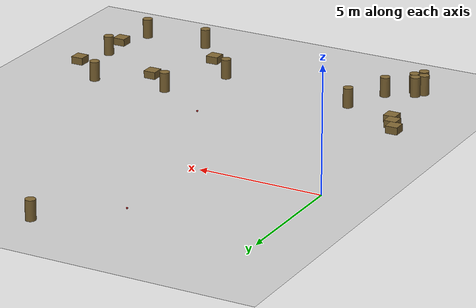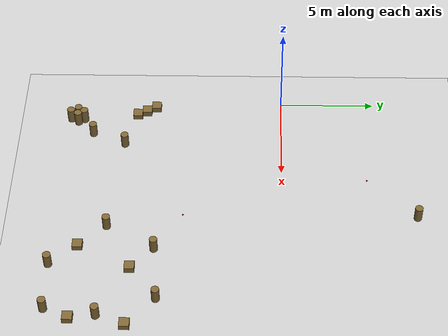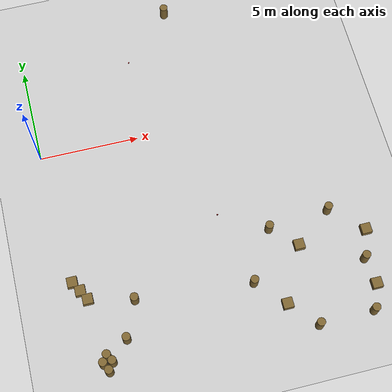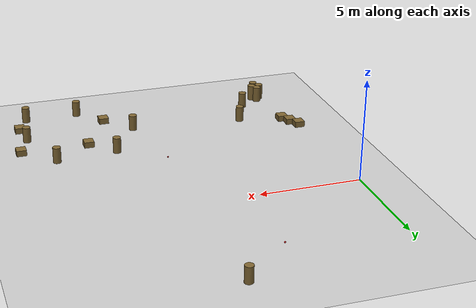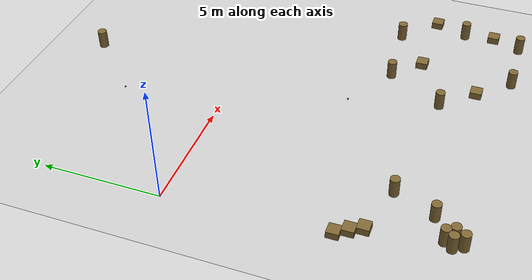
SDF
<sdf version="1.6">
 <world name="default">
  <model name="ground_plane">
   <static>1</static>
   <link name="link">
    <collision name="collision">
     <geometry><plane><normal>0 0 1</normal><size>100 100</size></plane></geometry>
     <surface><friction><ode><mu>100</mu><mu2>50</mu2></ode></friction></surface>
    </collision>
    <visual name="visual">
     <cast_shadows>0</cast_shadows>
     <geometry><plane><normal>0 0 1</normal><size>100 100</size></plane></geometry>
     <material>
      <script><uri>file://media/materials/scripts/gazebo.material</uri><name>Gazebo/Grey</name></script>
     </material>
    </visual>
   </link>
  </model>
  <model name="mini_cylinder_0_clone_0">
   <link name="link">
    <inertial>
     <mass>1</mass>
     <inertia><ixx>0.145833</ixx><ixy>0</ixy><ixz>0</ixz><iyy>0.145833</iyy><iyz>0</iyz><izz>0.125</izz></inertia>
    </inertial>
    <visual name="visual">
     <geometry><cylinder><radius>0.2</radius><length>0.8</length></cylinder></geometry>
     <material>
      <script><name>Gazebo/Grey</name><uri>file://media/materials/scripts/gazebo.material</uri></script>
      <shader type="vertex"><normal_map>__default__</normal_map></shader>
      <ambient>0.5 0.4 0.2 1</ambient>
      <diffuse>0.7 0.7 0.7 1</diffuse>
      <specular>0.01 0.01 0.01 1</specular>
      <emissive>0 0 0 1</emissive>
     </material>
    </visual>
    <collision name="collision">
     <geometry><cylinder><radius>0.2</radius><length>0.8</length></cylinder></geometry>
     <surface>
      <friction>
       <ode><mu>1</mu><mu2>1</mu2><fdir1>0 0 0</fdir1><slip1>0</slip1><slip2>0</slip2></ode>
       <torsional>
        <coefficient>1</coefficient>
        <patch_radius>0</patch_radius>
        <surface_radius>0</surface_radius>
        <use_patch_radius>1</use_patch_radius>
        <ode><slip>0</slip></ode>
       </torsional>
      </friction>
      <bounce><restitution_coefficient>0</restitution_coefficient><threshold>1e+06</threshold></bounce>
      <contact>
       <collide_without_contact>0</collide_without_contact>
       <collide_without_contact_bitmask>1</collide_without_contact_bitmask>
       <collide_bitmask>1</collide_bitmask>
       <ode>
        <soft_cfm>0</soft_cfm>
        <soft_erp>0.2</soft_erp>
        <kp>1e+13</kp>
        <kd>1</kd>
        <max_vel>0.01</max_vel>
        <min_depth>0</min_depth>
       </ode>
       <bullet>
        <split_impulse>1</split_impulse>
        <split_impulse_penetration_threshold>-0.01</split_impulse_penetration_threshold>
        <soft_cfm>0</soft_cfm>
        <soft_erp>0.2</soft_erp>
        <kp>1e+13</kp>
        <kd>1</kd>
       </bullet>
      </contact>
     </surface>
    </collision>
   </link>
   <static>1</static>
   <pose>8 6.85 0.4 0 -0 0</pose>
  </model>
  <model name="mini_cylinder_0_clone_0_clone">
   <link name="link">
    <inertial>
     <mass>1</mass>
     <inertia><ixx>0.145833</ixx><ixy>0</ixy><ixz>0</ixz><iyy>0.145833</iyy><iyz>0</iyz><izz>0.125</izz></inertia>
    </inertial>
    <visual name="visual">
     <geometry><cylinder><radius>0.2</radius><length>0.8</length></cylinder></geometry>
     <material>
      <script><name>Gazebo/Grey</name><uri>file://media/materials/scripts/gazebo.material</uri></script>
      <shader type="vertex"><normal_map>__default__</normal_map></shader>
      <ambient>0.5 0.4 0.2 1</ambient>
      <diffuse>0.7 0.7 0.7 1</diffuse>
      <specular>0.01 0.01 0.01 1</specular>
      <emissive>0 0 0 1</emissive>
     </material>
    </visual>
    <collision name="collision">
     <geometry><cylinder><radius>0.2</radius><length>0.8</length></cylinder></geometry>
     <surface>
      <friction>
       <ode><mu>1</mu><mu2>1</mu2><fdir1>0 0 0</fdir1><slip1>0</slip1><slip2>0</slip2></ode>
       <torsional>
        <coefficient>1</coefficient>
        <patch_radius>0</patch_radius>
        <surface_radius>0</surface_radius>
        <use_patch_radius>1</use_patch_radius>
        <ode><slip>0</slip></ode>
       </torsional>
      </friction>
      <bounce><restitution_coefficient>0</restitution_coefficient><threshold>1e+06</threshold></bounce>
      <contact>
       <collide_without_contact>0</collide_without_contact>
       <collide_without_contact_bitmask>1</collide_without_contact_bitmask>
       <collide_bitmask>1</collide_bitmask>
       <ode>
        <soft_cfm>0</soft_cfm>
        <soft_erp>0.2</soft_erp>
        <kp>1e+13</kp>
        <kd>1</kd>
        <max_vel>0.01</max_vel>
        <min_depth>0</min_depth>
       </ode>
       <bullet>
        <split_impulse>1</split_impulse>
        <split_impulse_penetration_threshold>-0.01</split_impulse_penetration_threshold>
        <soft_cfm>0</soft_cfm>
        <soft_erp>0.2</soft_erp>
        <kp>1e+13</kp>
        <kd>1</kd>
       </bullet>
      </contact>
     </surface>
    </collision>
   </link>
   <static>1</static>
   <pose>13.224 -6.11998 0.4 0 -0 0</pose>
  </model>
  <model name="mini_cylinder_0_clone_0_clone_0">
   <link name="link">
    <inertial>
     <mass>1</mass>
     <inertia><ixx>0.145833</ixx><ixy>0</ixy><ixz>0</ixz><iyy>0.145833</iyy><iyz>0</iyz><izz>0.125</izz></inertia>
    </inertial>
    <visual name="visual">
     <geometry><cylinder><radius>0.2</radius><length>0.8</length></cylinder></geometry>
     <material>
      <script><name>Gazebo/Grey</name><uri>file://media/materials/scripts/gazebo.material</uri></script>
      <shader type="vertex"><normal_map>__default__</normal_map></shader>
      <ambient>0.5 0.4 0.2 1</ambient>
      <diffuse>0.7 0.7 0.7 1</diffuse>
      <specular>0.01 0.01 0.01 1</specular>
      <emissive>0 0 0 1</emissive>
     </material>
    </visual>
    <collision name="collision">
     <geometry><cylinder><radius>0.2</radius><length>0.8</length></cylinder></geometry>
     <surface>
      <friction>
       <ode><mu>1</mu><mu2>1</mu2><fdir1>0 0 0</fdir1><slip1>0</slip1><slip2>0</slip2></ode>
       <torsional>
        <coefficient>1</coefficient>
        <patch_radius>0</patch_radius>
        <surface_radius>0</surface_radius>
        <use_patch_radius>1</use_patch_radius>
        <ode><slip>0</slip></ode>
       </torsional>
      </friction>
      <bounce><restitution_coefficient>0</restitution_coefficient><threshold>1e+06</threshold></bounce>
      <contact>
       <collide_without_contact>0</collide_without_contact>
       <collide_without_contact_bitmask>1</collide_without_contact_bitmask>
       <collide_bitmask>1</collide_bitmask>
       <ode>
        <soft_cfm>0</soft_cfm>
        <soft_erp>0.2</soft_erp>
        <kp>1e+13</kp>
        <kd>1</kd>
        <max_vel>0.01</max_vel>
        <min_depth>0</min_depth>
       </ode>
       <bullet>
        <split_impulse>1</split_impulse>
        <split_impulse_penetration_threshold>-0.01</split_impulse_penetration_threshold>
        <soft_cfm>0</soft_cfm>
        <soft_erp>0.2</soft_erp>
        <kp>1e+13</kp>
        <kd>1</kd>
       </bullet>
      </contact>
     </surface>
    </collision>
   </link>
   <static>1</static>
   <pose>8.7545 -8.82263 0.4 0 -0 0</pose>
  </model>
  <model name="mini_cylinder_0_clone_0_clone_1">
   <link name="link">
    <inertial>
     <mass>1</mass>
     <inertia><ixx>0.145833</ixx><ixy>0</ixy><ixz>0</ixz><iyy>0.145833</iyy><iyz>0</iyz><izz>0.125</izz></inertia>
    </inertial>
    <visual name="visual">
     <geometry><cylinder><radius>0.2</radius><length>0.8</length></cylinder></geometry>
     <material>
      <script><name>Gazebo/Grey</name><uri>file://media/materials/scripts/gazebo.material</uri></script>
      <shader type="vertex"><normal_map>__default__</normal_map></shader>
      <ambient>0.5 0.4 0.2 1</ambient>
      <diffuse>0.7 0.7 0.7 1</diffuse>
      <specular>0.01 0.01 0.01 1</specular>
      <emissive>0 0 0 1</emissive>
     </material>
    </visual>
    <collision name="collision">
     <geometry><cylinder><radius>0.2</radius><length>0.8</length></cylinder></geometry>
     <surface>
      <friction>
       <ode><mu>1</mu><mu2>1</mu2><fdir1>0 0 0</fdir1><slip1>0</slip1><slip2>0</slip2></ode>
       <torsional>
        <coefficient>1</coefficient>
        <patch_radius>0</patch_radius>
        <surface_radius>0</surface_radius>
        <use_patch_radius>1</use_patch_radius>
        <ode><slip>0</slip></ode>
       </torsional>
      </friction>
      <bounce><restitution_coefficient>0</restitution_coefficient><threshold>1e+06</threshold></bounce>
      <contact>
       <collide_without_contact>0</collide_without_contact>
       <collide_without_contact_bitmask>1</collide_without_contact_bitmask>
       <collide_bitmask>1</collide_bitmask>
       <ode>
        <soft_cfm>0</soft_cfm>
        <soft_erp>0.2</soft_erp>
        <kp>1e+13</kp>
        <kd>1</kd>
        <max_vel>0.01</max_vel>
        <min_depth>0</min_depth>
       </ode>
       <bullet>
        <split_impulse>1</split_impulse>
        <split_impulse_penetration_threshold>-0.01</split_impulse_penetration_threshold>
        <soft_cfm>0</soft_cfm>
        <soft_erp>0.2</soft_erp>
        <kp>1e+13</kp>
        <kd>1</kd>
       </bullet>
      </contact>
     </surface>
    </collision>
   </link>
   <static>1</static>
   <pose>14.2436 -8.91515 0.4 0 -0 0</pose>
  </model>
  <model name="mini_cylinder_0_clone_0_clone_2">
   <link name="link">
    <inertial>
     <mass>1</mass>
     <inertia><ixx>0.145833</ixx><ixy>0</ixy><ixz>0</ixz><iyy>0.145833</iyy><iyz>0</iyz><izz>0.125</izz></inertia>
    </inertial>
    <visual name="visual">
     <geometry><cylinder><radius>0.2</radius><length>0.8</length></cylinder></geometry>
     <material>
      <script><name>Gazebo/Grey</name><uri>file://media/materials/scripts/gazebo.material</uri></script>
      <shader type="vertex"><normal_map>__default__</normal_map></shader>
      <ambient>0.5 0.4 0.2 1</ambient>
      <diffuse>0.7 0.7 0.7 1</diffuse>
      <specular>0.01 0.01 0.01 1</specular>
      <emissive>0 0 0 1</emissive>
     </material>
    </visual>
    <collision name="collision">
     <geometry><cylinder><radius>0.2</radius><length>0.8</length></cylinder></geometry>
     <surface>
      <friction>
       <ode><mu>1</mu><mu2>1</mu2><fdir1>0 0 0</fdir1><slip1>0</slip1><slip2>0</slip2></ode>
       <torsional>
        <coefficient>1</coefficient>
        <patch_radius>0</patch_radius>
        <surface_radius>0</surface_radius>
        <use_patch_radius>1</use_patch_radius>
        <ode><slip>0</slip></ode>
       </torsional>
      </friction>
      <bounce><restitution_coefficient>0</restitution_coefficient><threshold>1e+06</threshold></bounce>
      <contact>
       <collide_without_contact>0</collide_without_contact>
       <collide_without_contact_bitmask>1</collide_without_contact_bitmask>
       <collide_bitmask>1</collide_bitmask>
       <ode>
        <soft_cfm>0</soft_cfm>
        <soft_erp>0.2</soft_erp>
        <kp>1e+13</kp>
        <kd>1</kd>
        <max_vel>0.01</max_vel>
        <min_depth>0</min_depth>
       </ode>
       <bullet>
        <split_impulse>1</split_impulse>
        <split_impulse_penetration_threshold>-0.01</split_impulse_penetration_threshold>
        <soft_cfm>0</soft_cfm>
        <soft_erp>0.2</soft_erp>
        <kp>1e+13</kp>
        <kd>1</kd>
       </bullet>
      </contact>
     </surface>
    </collision>
   </link>
   <static>1</static>
   <pose>13.8924 -11.4476 0.4 0 -0 0</pose>
  </model>
  <model name="mini_box_clone_clone_3_clone">
   <link name="link">
    <inertial>
     <mass>1</mass>
     <inertia>
      <ixx>0.166667</ixx>
      <ixy>0</ixy>
      <ixz>0</ixz>
      <iyy>0.166667</iyy>
      <iyz>0</iyz>
      <izz>0.166667</izz>
     </inertia>
    </inertial>
    <visual name="visual">
     <geometry><box><size>0.5 0.5 0.3</size></box></geometry>
     <material>
      <script><name>Gazebo/Grey</name><uri>file://media/materials/scripts/gazebo.material</uri></script>
      <shader type="vertex"><normal_map>__default__</normal_map></shader>
      <ambient>0.5 0.4 0.2 1</ambient>
      <diffuse>0.7 0.7 0.7 1</diffuse>
      <specular>0.01 0.01 0.01 1</specular>
      <emissive>0 0 0 1</emissive>
     </material>
    </visual>
    <collision name="collision">
     <geometry><box><size>0.5 0.5 0.3</size></box></geometry>
     <surface>
      <friction>
       <ode><mu>1</mu><mu2>1</mu2><fdir1>0 0 0</fdir1><slip1>0</slip1><slip2>0</slip2></ode>
       <torsional>
        <coefficient>1</coefficient>
        <patch_radius>0</patch_radius>
        <surface_radius>0</surface_radius>
        <use_patch_radius>1</use_patch_radius>
        <ode><slip>0</slip></ode>
       </torsional>
      </friction>
      <bounce><restitution_coefficient>0</restitution_coefficient><threshold>1e+06</threshold></bounce>
      <contact>
       <collide_without_contact>0</collide_without_contact>
       <collide_without_contact_bitmask>1</collide_without_contact_bitmask>
       <collide_bitmask>1</collide_bitmask>
       <ode>
        <soft_cfm>0</soft_cfm>
        <soft_erp>0.2</soft_erp>
        <kp>1e+13</kp>
        <kd>1</kd>
        <max_vel>0.01</max_vel>
        <min_depth>0</min_depth>
       </ode>
       <bullet>
        <split_impulse>1</split_impulse>
        <split_impulse_penetration_threshold>-0.01</split_impulse_penetration_threshold>
        <soft_cfm>0</soft_cfm>
        <soft_erp>0.2</soft_erp>
        <kp>1e+13</kp>
        <kd>1</kd>
       </bullet>
      </contact>
     </surface>
    </collision>
   </link>
   <static>1</static>
   <pose>11.3808 -7.50629 0.15 0 -0 0</pose>
  </model>
  <model name="mini_box_clone_clone_3_clone_0">
   <link name="link">
    <inertial>
     <mass>1</mass>
     <inertia>
      <ixx>0.166667</ixx>
      <ixy>0</ixy>
      <ixz>0</ixz>
      <iyy>0.166667</iyy>
      <iyz>0</iyz>
      <izz>0.166667</izz>
     </inertia>
    </inertial>
    <visual name="visual">
     <geometry><box><size>0.5 0.5 0.3</size></box></geometry>
     <material>
      <script><name>Gazebo/Grey</name><uri>file://media/materials/scripts/gazebo.material</uri></script>
      <shader type="vertex"><normal_map>__default__</normal_map></shader>
      <ambient>0.5 0.4 0.2 1</ambient>
      <diffuse>0.7 0.7 0.7 1</diffuse>
      <specular>0.01 0.01 0.01 1</specular>
      <emissive>0 0 0 1</emissive>
     </material>
    </visual>
    <collision name="collision">
     <geometry><box><size>0.5 0.5 0.3</size></box></geometry>
     <surface>
      <friction>
       <ode><mu>1</mu><mu2>1</mu2><fdir1>0 0 0</fdir1><slip1>0</slip1><slip2>0</slip2></ode>
       <torsional>
        <coefficient>1</coefficient>
        <patch_radius>0</patch_radius>
        <surface_radius>0</surface_radius>
        <use_patch_radius>1</use_patch_radius>
        <ode><slip>0</slip></ode>
       </torsional>
      </friction>
      <bounce><restitution_coefficient>0</restitution_coefficient><threshold>1e+06</threshold></bounce>
      <contact>
       <collide_without_contact>0</collide_without_contact>
       <collide_without_contact_bitmask>1</collide_without_contact_bitmask>
       <collide_bitmask>1</collide_bitmask>
       <ode>
        <soft_cfm>0</soft_cfm>
        <soft_erp>0.2</soft_erp>
        <kp>1e+13</kp>
        <kd>1</kd>
        <max_vel>0.01</max_vel>
        <min_depth>0</min_depth>
       </ode>
       <bullet>
        <split_impulse>1</split_impulse>
        <split_impulse_penetration_threshold>-0.01</split_impulse_penetration_threshold>
        <soft_cfm>0</soft_cfm>
        <soft_erp>0.2</soft_erp>
        <kp>1e+13</kp>
        <kd>1</kd>
       </bullet>
      </contact>
     </surface>
    </collision>
   </link>
   <static>1</static>
   <pose>10.0339 -10.1728 0.15 0 -0 0</pose>
  </model>
  <model name="mini_box_clone_clone_3_clone_1">
   <link name="link">
    <inertial>
     <mass>1</mass>
     <inertia>
      <ixx>0.166667</ixx>
      <ixy>0</ixy>
      <ixz>0</ixz>
      <iyy>0.166667</iyy>
      <iyz>0</iyz>
      <izz>0.166667</izz>
     </inertia>
    </inertial>
    <visual name="visual">
     <geometry><box><size>0.5 0.5 0.3</size></box></geometry>
     <material>
      <script><name>Gazebo/Grey</name><uri>file://media/materials/scripts/gazebo.material</uri></script>
      <shader type="vertex"><normal_map>__default__</normal_map></shader>
      <ambient>0.5 0.4 0.2 1</ambient>
      <diffuse>0.7 0.7 0.7 1</diffuse>
      <specular>0.01 0.01 0.01 1</specular>
      <emissive>0 0 0 1</emissive>
     </material>
    </visual>
    <collision name="collision">
     <geometry><box><size>0.5 0.5 0.3</size></box></geometry>
     <surface>
      <friction>
       <ode><mu>1</mu><mu2>1</mu2><fdir1>0 0 0</fdir1><slip1>0</slip1><slip2>0</slip2></ode>
       <torsional>
        <coefficient>1</coefficient>
        <patch_radius>0</patch_radius>
        <surface_radius>0</surface_radius>
        <use_patch_radius>1</use_patch_radius>
        <ode><slip>0</slip></ode>
       </torsional>
      </friction>
      <bounce><restitution_coefficient>0</restitution_coefficient><threshold>1e+06</threshold></bounce>
      <contact>
       <collide_without_contact>0</collide_without_contact>
       <collide_without_contact_bitmask>1</collide_without_contact_bitmask>
       <collide_bitmask>1</collide_bitmask>
       <ode>
        <soft_cfm>0</soft_cfm>
        <soft_erp>0.2</soft_erp>
        <kp>1e+13</kp>
        <kd>1</kd>
        <max_vel>0.01</max_vel>
        <min_depth>0</min_depth>
       </ode>
       <bullet>
        <split_impulse>1</split_impulse>
        <split_impulse_penetration_threshold>-0.01</split_impulse_penetration_threshold>
        <soft_cfm>0</soft_cfm>
        <soft_erp>0.2</soft_erp>
        <kp>1e+13</kp>
        <kd>1</kd>
       </bullet>
      </contact>
     </surface>
    </collision>
   </link>
   <static>1</static>
   <pose>14.4187 -10.2264 0.15 0 -0 0</pose>
  </model>
  <model name="mini_box_clone_clone_3_clone_2">
   <link name="link">
    <inertial>
     <mass>1</mass>
     <inertia>
      <ixx>0.166667</ixx>
      <ixy>0</ixy>
      <ixz>0</ixz>
      <iyy>0.166667</iyy>
      <iyz>0</iyz>
      <izz>0.166667</izz>
     </inertia>
    </inertial>
    <visual name="visual">
     <geometry><box><size>0.5 0.5 0.3</size></box></geometry>
     <material>
      <script><name>Gazebo/Grey</name><uri>file://media/materials/scripts/gazebo.material</uri></script>
      <shader type="vertex"><normal_map>__default__</normal_map></shader>
      <ambient>0.5 0.4 0.2 1</ambient>
      <diffuse>0.7 0.7 0.7 1</diffuse>
      <specular>0.01 0.01 0.01 1</specular>
      <emissive>0 0 0 1</emissive>
     </material>
    </visual>
    <collision name="collision">
     <geometry><box><size>0.5 0.5 0.3</size></box></geometry>
     <surface>
      <friction>
       <ode><mu>1</mu><mu2>1</mu2><fdir1>0 0 0</fdir1><slip1>0</slip1><slip2>0</slip2></ode>
       <torsional>
        <coefficient>1</coefficient>
        <patch_radius>0</patch_radius>
        <surface_radius>0</surface_radius>
        <use_patch_radius>1</use_patch_radius>
        <ode><slip>0</slip></ode>
       </torsional>
      </friction>
      <bounce><restitution_coefficient>0</restitution_coefficient><threshold>1e+06</threshold></bounce>
      <contact>
       <collide_without_contact>0</collide_without_contact>
       <collide_without_contact_bitmask>1</collide_without_contact_bitmask>
       <collide_bitmask>1</collide_bitmask>
       <ode>
        <soft_cfm>0</soft_cfm>
        <soft_erp>0.2</soft_erp>
        <kp>1e+13</kp>
        <kd>1</kd>
        <max_vel>0.01</max_vel>
        <min_depth>0</min_depth>
       </ode>
       <bullet>
        <split_impulse>1</split_impulse>
        <split_impulse_penetration_threshold>-0.01</split_impulse_penetration_threshold>
        <soft_cfm>0</soft_cfm>
        <soft_erp>0.2</soft_erp>
        <kp>1e+13</kp>
        <kd>1</kd>
       </bullet>
      </contact>
     </surface>
    </collision>
   </link>
   <static>1</static>
   <pose>14.767 -7.51176 0.15 0 -0 0</pose>
  </model>
  <model name="mini_cylinder_0_clone_0_clone_clone">
   <link name="link">
    <inertial>
     <mass>1</mass>
     <inertia><ixx>0.145833</ixx><ixy>0</ixy><ixz>0</ixz><iyy>0.145833</iyy><iyz>0</iyz><izz>0.125</izz></inertia>
    </inertial>
    <visual name="visual">
     <geometry><cylinder><radius>0.2</radius><length>0.8</length></cylinder></geometry>
     <material>
      <script><name>Gazebo/Grey</name><uri>file://media/materials/scripts/gazebo.material</uri></script>
      <shader type="vertex"><normal_map>__default__</normal_map></shader>
      <ambient>0.5 0.4 0.2 1</ambient>
      <diffuse>0.7 0.7 0.7 1</diffuse>
      <specular>0.01 0.01 0.01 1</specular>
      <emissive>0 0 0 1</emissive>
     </material>
    </visual>
    <collision name="collision">
     <geometry><cylinder><radius>0.2</radius><length>0.8</length></cylinder></geometry>
     <surface>
      <friction>
       <ode><mu>1</mu><mu2>1</mu2><fdir1>0 0 0</fdir1><slip1>0</slip1><slip2>0</slip2></ode>
       <torsional>
        <coefficient>1</coefficient>
        <patch_radius>0</patch_radius>
        <surface_radius>0</surface_radius>
        <use_patch_radius>1</use_patch_radius>
        <ode><slip>0</slip></ode>
       </torsional>
      </friction>
      <bounce><restitution_coefficient>0</restitution_coefficient><threshold>1e+06</threshold></bounce>
      <contact>
       <collide_without_contact>0</collide_without_contact>
       <collide_without_contact_bitmask>1</collide_without_contact_bitmask>
       <collide_bitmask>1</collide_bitmask>
       <ode>
        <soft_cfm>0</soft_cfm>
        <soft_erp>0.2</soft_erp>
        <kp>1e+13</kp>
        <kd>1</kd>
        <max_vel>0.01</max_vel>
        <min_depth>0</min_depth>
       </ode>
       <bullet>
        <split_impulse>1</split_impulse>
        <split_impulse_penetration_threshold>-0.01</split_impulse_penetration_threshold>
        <soft_cfm>0</soft_cfm>
        <soft_erp>0.2</soft_erp>
        <kp>1e+13</kp>
        <kd>1</kd>
       </bullet>
      </contact>
     </surface>
    </collision>
   </link>
   <static>1</static>
   <pose>10.1744 -6.38296 0.4 0 -0 0</pose>
  </model>
  <model name="mini_cylinder_0_clone_0_clone_clone_0">
   <link name="link">
    <inertial>
     <mass>1</mass>
     <inertia><ixx>0.145833</ixx><ixy>0</ixy><ixz>0</ixz><iyy>0.145833</iyy><iyz>0</iyz><izz>0.125</izz></inertia>
    </inertial>
    <visual name="visual">
     <geometry><cylinder><radius>0.2</radius><length>0.8</length></cylinder></geometry>
     <material>
      <script><name>Gazebo/Grey</name><uri>file://media/materials/scripts/gazebo.material</uri></script>
      <shader type="vertex"><normal_map>__default__</normal_map></shader>
      <ambient>0.5 0.4 0.2 1</ambient>
      <diffuse>0.7 0.7 0.7 1</diffuse>
      <specular>0.01 0.01 0.01 1</specular>
      <emissive>0 0 0 1</emissive>
     </material>
    </visual>
    <collision name="collision">
     <geometry><cylinder><radius>0.2</radius><length>0.8</length></cylinder></geometry>
     <surface>
      <friction>
       <ode><mu>1</mu><mu2>1</mu2><fdir1>0 0 0</fdir1><slip1>0</slip1><slip2>0</slip2></ode>
       <torsional>
        <coefficient>1</coefficient>
        <patch_radius>0</patch_radius>
        <surface_radius>0</surface_radius>
        <use_patch_radius>1</use_patch_radius>
        <ode><slip>0</slip></ode>
       </torsional>
      </friction>
      <bounce><restitution_coefficient>0</restitution_coefficient><threshold>1e+06</threshold></bounce>
      <contact>
       <collide_without_contact>0</collide_without_contact>
       <collide_without_contact_bitmask>1</collide_without_contact_bitmask>
       <collide_bitmask>1</collide_bitmask>
       <ode>
        <soft_cfm>0</soft_cfm>
        <soft_erp>0.2</soft_erp>
        <kp>1e+13</kp>
        <kd>1</kd>
        <max_vel>0.01</max_vel>
        <min_depth>0</min_depth>
       </ode>
       <bullet>
        <split_impulse>1</split_impulse>
        <split_impulse_penetration_threshold>-0.01</split_impulse_penetration_threshold>
        <soft_cfm>0</soft_cfm>
        <soft_erp>0.2</soft_erp>
        <kp>1e+13</kp>
        <kd>1</kd>
       </bullet>
      </contact>
     </surface>
    </collision>
   </link>
   <static>1</static>
   <pose>11.1967 -11.5076 0.4 0 -0 0</pose>
  </model>
  <model name="target_0">
   <link name="link">
    <pose>0 0 0.0375 0 -0 0</pose>
    <inertial>
     <mass>0.1467</mass>
     <inertia>
      <ixx>8.25187e-05</ixx>
      <ixy>0</ixy>
      <ixz>0</ixz>
      <iyy>8.25187e-05</iyy>
      <iyz>0</iyz>
      <izz>8.25187e-05</izz>
     </inertia>
    </inertial>
    <velocity_decay><linear>0</linear><angular>0.005</angular></velocity_decay>
    <visual name="visual">
     <geometry><sphere><radius>0.0375</radius></sphere></geometry>
     <material>
      <script><uri>file://media/materials/scripts/gazebo.material</uri><name>Gazebo/Red</name></script>
      <shader type="pixel"/>
     </material>
    </visual>
    <collision name="collision">
     <geometry><sphere><radius>0.0375</radius></sphere></geometry>
     <surface>
      <friction>
       <ode><mu>1</mu><mu2>1</mu2><fdir1>0 0 0</fdir1><slip1>0</slip1><slip2>0</slip2></ode>
       <torsional>
        <coefficient>1</coefficient>
        <patch_radius>0</patch_radius>
        <surface_radius>0.01</surface_radius>
        <use_patch_radius>0</use_patch_radius>
        <ode><slip>0</slip></ode>
       </torsional>
      </friction>
      <bounce><restitution_coefficient>0</restitution_coefficient><threshold>1e+06</threshold></bounce>
      <contact>
       <collide_without_contact>0</collide_without_contact>
       <collide_without_contact_bitmask>1</collide_without_contact_bitmask>
       <collide_bitmask>1</collide_bitmask>
       <ode>
        <soft_cfm>0</soft_cfm>
        <soft_erp>0.2</soft_erp>
        <kp>100000</kp>
        <kd>100</kd>
        <max_vel>100</max_vel>
        <min_depth>0.001</min_depth>
       </ode>
       <bullet>
        <split_impulse>1</split_impulse>
        <split_impulse_penetration_threshold>-0.01</split_impulse_penetration_threshold>
        <soft_cfm>0</soft_cfm>
        <soft_erp>0.2</soft_erp>
        <kp>100000</kp>
        <kd>100</kd>
       </bullet>
      </contact>
     </surface>
    </collision>
   </link>
   <static>0</static>
   <pose>5.5098 4.40714 -0.001014 0 -0 0</pose>
  </model>
  <model name="target_3">
   <link name="link">
    <pose>0 0 0.0375 0 -0 0</pose>
    <inertial>
     <mass>0.1467</mass>
     <inertia>
      <ixx>8.25187e-05</ixx>
      <ixy>0</ixy>
      <ixz>0</ixz>
      <iyy>8.25187e-05</iyy>
      <iyz>0</iyz>
      <izz>8.25187e-05</izz>
     </inertia>
    </inertial>
    <velocity_decay><linear>0</linear><angular>0.005</angular></velocity_decay>
    <visual name="visual">
     <geometry><sphere><radius>0.0375</radius></sphere></geometry>
     <material>
      <script><uri>file://media/materials/scripts/gazebo.material</uri><name>Gazebo/Red</name></script>
      <shader type="pixel"/>
     </material>
    </visual>
    <collision name="collision">
     <geometry><sphere><radius>0.0375</radius></sphere></geometry>
     <surface>
      <friction>
       <ode><mu>1</mu><mu2>1</mu2><fdir1>0 0 0</fdir1><slip1>0</slip1><slip2>0</slip2></ode>
       <torsional>
        <coefficient>1</coefficient>
        <patch_radius>0</patch_radius>
        <surface_radius>0.01</surface_radius>
        <use_patch_radius>0</use_patch_radius>
        <ode><slip>0</slip></ode>
       </torsional>
      </friction>
      <bounce><restitution_coefficient>0</restitution_coefficient><threshold>1e+06</threshold></bounce>
      <contact>
       <collide_without_contact>0</collide_without_contact>
       <collide_without_contact_bitmask>1</collide_without_contact_bitmask>
       <collide_bitmask>1</collide_bitmask>
       <ode>
        <soft_cfm>0</soft_cfm>
        <soft_erp>0.2</soft_erp>
        <kp>100000</kp>
        <kd>100</kd>
        <max_vel>100</max_vel>
        <min_depth>0.001</min_depth>
       </ode>
       <bullet>
        <split_impulse>1</split_impulse>
        <split_impulse_penetration_threshold>-0.01</split_impulse_penetration_threshold>
        <soft_cfm>0</soft_cfm>
        <soft_erp>0.2</soft_erp>
        <kp>100000</kp>
        <kd>100</kd>
       </bullet>
      </contact>
     </surface>
    </collision>
   </link>
   <static>0</static>
   <pose>7.94169 -5.02618 -0.001014 0 -0 0</pose>
  </model>
  <model name="mini_box_clone_clone_3_clone_0_clone_0_clone">
   <link name="link">
    <inertial>
     <mass>1</mass>
     <inertia>
      <ixx>0.166667</ixx>
      <ixy>0</ixy>
      <ixz>0</ixz>
      <iyy>0.166667</iyy>
      <iyz>0</iyz>
      <izz>0.166667</izz>
     </inertia>
    </inertial>
    <visual name="visual">
     <geometry><box><size>0.5 0.5 0.3</size></box></geometry>
     <material>
      <script><name>Gazebo/Grey</name><uri>file://media/materials/scripts/gazebo.material</uri></script>
      <shader type="vertex"><normal_map>__default__</normal_map></shader>
      <ambient>0.5 0.4 0.2 1</ambient>
      <diffuse>0.7 0.7 0.7 1</diffuse>
      <specular>0.01 0.01 0.01 1</specular>
      <emissive>0 0 0 1</emissive>
     </material>
    </visual>
    <collision name="collision">
     <geometry><box><size>0.5 0.5 0.3</size></box></geometry>
     <surface>
      <friction>
       <ode><mu>1</mu><mu2>1</mu2><fdir1>0 0 0</fdir1><slip1>0</slip1><slip2>0</slip2></ode>
       <torsional>
        <coefficient>1</coefficient>
        <patch_radius>0</patch_radius>
        <surface_radius>0</surface_radius>
        <use_patch_radius>1</use_patch_radius>
        <ode><slip>0</slip></ode>
       </torsional>
      </friction>
      <bounce><restitution_coefficient>0</restitution_coefficient><threshold>1e+06</threshold></bounce>
      <contact>
       <collide_without_contact>0</collide_without_contact>
       <collide_without_contact_bitmask>1</collide_without_contact_bitmask>
       <collide_bitmask>1</collide_bitmask>
       <ode>
        <soft_cfm>0</soft_cfm>
        <soft_erp>0.2</soft_erp>
        <kp>1e+13</kp>
        <kd>1</kd>
        <max_vel>0.01</max_vel>
        <min_depth>0</min_depth>
       </ode>
       <bullet>
        <split_impulse>1</split_impulse>
        <split_impulse_penetration_threshold>-0.01</split_impulse_penetration_threshold>
        <soft_cfm>0</soft_cfm>
        <soft_erp>0.2</soft_erp>
        <kp>1e+13</kp>
        <kd>1</kd>
       </bullet>
      </contact>
     </surface>
    </collision>
   </link>
   <static>1</static>
   <pose>0.922017 -7.73696 0.15 0 -0 0</pose>
  </model>
  <model name="mini_box_clone_clone_3_clone_0_clone_0_clone_0">
   <link name="link">
    <inertial>
     <mass>1</mass>
     <inertia>
      <ixx>0.166667</ixx>
      <ixy>0</ixy>
      <ixz>0</ixz>
      <iyy>0.166667</iyy>
      <iyz>0</iyz>
      <izz>0.166667</izz>
     </inertia>
    </inertial>
    <visual name="visual">
     <geometry><box><size>0.5 0.5 0.3</size></box></geometry>
     <material>
      <script><name>Gazebo/Grey</name><uri>file://media/materials/scripts/gazebo.material</uri></script>
      <shader type="vertex"><normal_map>__default__</normal_map></shader>
      <ambient>0.5 0.4 0.2 1</ambient>
      <diffuse>0.7 0.7 0.7 1</diffuse>
      <specular>0.01 0.01 0.01 1</specular>
      <emissive>0 0 0 1</emissive>
     </material>
    </visual>
    <collision name="collision">
     <geometry><box><size>0.5 0.5 0.3</size></box></geometry>
     <surface>
      <friction>
       <ode><mu>1</mu><mu2>1</mu2><fdir1>0 0 0</fdir1><slip1>0</slip1><slip2>0</slip2></ode>
       <torsional>
        <coefficient>1</coefficient>
        <patch_radius>0</patch_radius>
        <surface_radius>0</surface_radius>
        <use_patch_radius>1</use_patch_radius>
        <ode><slip>0</slip></ode>
       </torsional>
      </friction>
      <bounce><restitution_coefficient>0</restitution_coefficient><threshold>1e+06</threshold></bounce>
      <contact>
       <collide_without_contact>0</collide_without_contact>
       <collide_without_contact_bitmask>1</collide_without_contact_bitmask>
       <collide_bitmask>1</collide_bitmask>
       <ode>
        <soft_cfm>0</soft_cfm>
        <soft_erp>0.2</soft_erp>
        <kp>1e+13</kp>
        <kd>1</kd>
        <max_vel>0.01</max_vel>
        <min_depth>0</min_depth>
       </ode>
       <bullet>
        <split_impulse>1</split_impulse>
        <split_impulse_penetration_threshold>-0.01</split_impulse_penetration_threshold>
        <soft_cfm>0</soft_cfm>
        <soft_erp>0.2</soft_erp>
        <kp>1e+13</kp>
        <kd>1</kd>
       </bullet>
      </contact>
     </surface>
    </collision>
   </link>
   <static>1</static>
   <pose>0.660577 -7.24657 0.15 0 -0 0</pose>
  </model>
  <model name="mini_box_clone_clone_3_clone_0_clone_0_clone_1">
   <link name="link">
    <inertial>
     <mass>1</mass>
     <inertia>
      <ixx>0.166667</ixx>
      <ixy>0</ixy>
      <ixz>0</ixz>
      <iyy>0.166667</iyy>
      <iyz>0</iyz>
      <izz>0.166667</izz>
     </inertia>
    </inertial>
    <visual name="visual">
     <geometry><box><size>0.5 0.5 0.3</size></box></geometry>
     <material>
      <script><name>Gazebo/Grey</name><uri>file://media/materials/scripts/gazebo.material</uri></script>
      <shader type="vertex"><normal_map>__default__</normal_map></shader>
      <ambient>0.5 0.4 0.2 1</ambient>
      <diffuse>0.7 0.7 0.7 1</diffuse>
      <specular>0.01 0.01 0.01 1</specular>
      <emissive>0 0 0 1</emissive>
     </material>
    </visual>
    <collision name="collision">
     <geometry><box><size>0.5 0.5 0.3</size></box></geometry>
     <surface>
      <friction>
       <ode><mu>1</mu><mu2>1</mu2><fdir1>0 0 0</fdir1><slip1>0</slip1><slip2>0</slip2></ode>
       <torsional>
        <coefficient>1</coefficient>
        <patch_radius>0</patch_radius>
        <surface_radius>0</surface_radius>
        <use_patch_radius>1</use_patch_radius>
        <ode><slip>0</slip></ode>
       </torsional>
      </friction>
      <bounce><restitution_coefficient>0</restitution_coefficient><threshold>1e+06</threshold></bounce>
      <contact>
       <collide_without_contact>0</collide_without_contact>
       <collide_without_contact_bitmask>1</collide_without_contact_bitmask>
       <collide_bitmask>1</collide_bitmask>
       <ode>
        <soft_cfm>0</soft_cfm>
        <soft_erp>0.2</soft_erp>
        <kp>1e+13</kp>
        <kd>1</kd>
        <max_vel>0.01</max_vel>
        <min_depth>0</min_depth>
       </ode>
       <bullet>
        <split_impulse>1</split_impulse>
        <split_impulse_penetration_threshold>-0.01</split_impulse_penetration_threshold>
        <soft_cfm>0</soft_cfm>
        <soft_erp>0.2</soft_erp>
        <kp>1e+13</kp>
        <kd>1</kd>
       </bullet>
      </contact>
     </surface>
    </collision>
   </link>
   <static>1</static>
   <pose>0.36643 -6.7564 0.15 0 -0 0</pose>
  </model>
  <model name="mini_cylinder_0_clone_0_clone_0_clone">
   <link name="link">
    <inertial>
     <mass>1</mass>
     <inertia><ixx>0.145833</ixx><ixy>0</ixy><ixz>0</ixz><iyy>0.145833</iyy><iyz>0</iyz><izz>0.125</izz></inertia>
    </inertial>
    <visual name="visual">
     <geometry><cylinder><radius>0.2</radius><length>0.8</length></cylinder></geometry>
     <material>
      <script><name>Gazebo/Grey</name><uri>file://media/materials/scripts/gazebo.material</uri></script>
      <shader type="vertex"><normal_map>__default__</normal_map></shader>
      <ambient>0.5 0.4 0.2 1</ambient>
      <diffuse>0.7 0.7 0.7 1</diffuse>
      <specular>0.01 0.01 0.01 1</specular>
      <emissive>0 0 0 1</emissive>
     </material>
    </visual>
    <collision name="collision">
     <geometry><cylinder><radius>0.2</radius><length>0.8</length></cylinder></geometry>
     <surface>
      <friction>
       <ode><mu>1</mu><mu2>1</mu2><fdir1>0 0 0</fdir1><slip1>0</slip1><slip2>0</slip2></ode>
       <torsional>
        <coefficient>1</coefficient>
        <patch_radius>0</patch_radius>
        <surface_radius>0</surface_radius>
        <use_patch_radius>1</use_patch_radius>
        <ode><slip>0</slip></ode>
       </torsional>
      </friction>
      <bounce><restitution_coefficient>0</restitution_coefficient><threshold>1e+06</threshold></bounce>
      <contact>
       <collide_without_contact>0</collide_without_contact>
       <collide_without_contact_bitmask>1</collide_without_contact_bitmask>
       <collide_bitmask>1</collide_bitmask>
       <ode>
        <soft_cfm>0</soft_cfm>
        <soft_erp>0.2</soft_erp>
        <kp>1e+13</kp>
        <kd>1</kd>
        <max_vel>0.01</max_vel>
        <min_depth>0</min_depth>
       </ode>
       <bullet>
        <split_impulse>1</split_impulse>
        <split_impulse_penetration_threshold>-0.01</split_impulse_penetration_threshold>
        <soft_cfm>0</soft_cfm>
        <soft_erp>0.2</soft_erp>
        <kp>1e+13</kp>
        <kd>1</kd>
       </bullet>
      </contact>
     </surface>
    </collision>
   </link>
   <static>1</static>
   <pose>1.28573 -10.5914 0.4 0 -0 0</pose>
  </model>
  <model name="mini_cylinder_0_clone_0_clone_0_clone_0">
   <link name="link">
    <inertial>
     <mass>1</mass>
     <inertia><ixx>0.145833</ixx><ixy>0</ixy><ixz>0</ixz><iyy>0.145833</iyy><iyz>0</iyz><izz>0.125</izz></inertia>
    </inertial>
    <visual name="visual">
     <geometry><cylinder><radius>0.2</radius><length>0.8</length></cylinder></geometry>
     <material>
      <script><name>Gazebo/Grey</name><uri>file://media/materials/scripts/gazebo.material</uri></script>
      <shader type="vertex"><normal_map>__default__</normal_map></shader>
      <ambient>0.5 0.4 0.2 1</ambient>
      <diffuse>0.7 0.7 0.7 1</diffuse>
      <specular>0.01 0.01 0.01 1</specular>
      <emissive>0 0 0 1</emissive>
     </material>
    </visual>
    <collision name="collision">
     <geometry><cylinder><radius>0.2</radius><length>0.8</length></cylinder></geometry>
     <surface>
      <friction>
       <ode><mu>1</mu><mu2>1</mu2><fdir1>0 0 0</fdir1><slip1>0</slip1><slip2>0</slip2></ode>
       <torsional>
        <coefficient>1</coefficient>
        <patch_radius>0</patch_radius>
        <surface_radius>0</surface_radius>
        <use_patch_radius>1</use_patch_radius>
        <ode><slip>0</slip></ode>
       </torsional>
      </friction>
      <bounce><restitution_coefficient>0</restitution_coefficient><threshold>1e+06</threshold></bounce>
      <contact>
       <collide_without_contact>0</collide_without_contact>
       <collide_without_contact_bitmask>1</collide_without_contact_bitmask>
       <collide_bitmask>1</collide_bitmask>
       <ode>
        <soft_cfm>0</soft_cfm>
        <soft_erp>0.2</soft_erp>
        <kp>1e+13</kp>
        <kd>1</kd>
        <max_vel>0.01</max_vel>
        <min_depth>0</min_depth>
       </ode>
       <bullet>
        <split_impulse>1</split_impulse>
        <split_impulse_penetration_threshold>-0.01</split_impulse_penetration_threshold>
        <soft_cfm>0</soft_cfm>
        <soft_erp>0.2</soft_erp>
        <kp>1e+13</kp>
        <kd>1</kd>
       </bullet>
      </contact>
     </surface>
    </collision>
   </link>
   <static>1</static>
   <pose>1.4823 -10.9191 0.4 0 -0 0</pose>
  </model>
  <model name="mini_cylinder_0_clone_0_clone_0_clone_1">
   <link name="link">
    <inertial>
     <mass>1</mass>
     <inertia><ixx>0.145833</ixx><ixy>0</ixy><ixz>0</ixz><iyy>0.145833</iyy><iyz>0</iyz><izz>0.125</izz></inertia>
    </inertial>
    <visual name="visual">
     <geometry><cylinder><radius>0.2</radius><length>0.8</length></cylinder></geometry>
     <material>
      <script><name>Gazebo/Grey</name><uri>file://media/materials/scripts/gazebo.material</uri></script>
      <shader type="vertex"><normal_map>__default__</normal_map></shader>
      <ambient>0.5 0.4 0.2 1</ambient>
      <diffuse>0.7 0.7 0.7 1</diffuse>
      <specular>0.01 0.01 0.01 1</specular>
      <emissive>0 0 0 1</emissive>
     </material>
    </visual>
    <collision name="collision">
     <geometry><cylinder><radius>0.2</radius><length>0.8</length></cylinder></geometry>
     <surface>
      <friction>
       <ode><mu>1</mu><mu2>1</mu2><fdir1>0 0 0</fdir1><slip1>0</slip1><slip2>0</slip2></ode>
       <torsional>
        <coefficient>1</coefficient>
        <patch_radius>0</patch_radius>
        <surface_radius>0</surface_radius>
        <use_patch_radius>1</use_patch_radius>
        <ode><slip>0</slip></ode>
       </torsional>
      </friction>
      <bounce><restitution_coefficient>0</restitution_coefficient><threshold>1e+06</threshold></bounce>
      <contact>
       <collide_without_contact>0</collide_without_contact>
       <collide_without_contact_bitmask>1</collide_without_contact_bitmask>
       <collide_bitmask>1</collide_bitmask>
       <ode>
        <soft_cfm>0</soft_cfm>
        <soft_erp>0.2</soft_erp>
        <kp>1e+13</kp>
        <kd>1</kd>
        <max_vel>0.01</max_vel>
        <min_depth>0</min_depth>
       </ode>
       <bullet>
        <split_impulse>1</split_impulse>
        <split_impulse_penetration_threshold>-0.01</split_impulse_penetration_threshold>
        <soft_cfm>0</soft_cfm>
        <soft_erp>0.2</soft_erp>
        <kp>1e+13</kp>
        <kd>1</kd>
       </bullet>
      </contact>
     </surface>
    </collision>
   </link>
   <static>1</static>
   <pose>1.05628 -10.9191 0.4 0 -0 0</pose>
  </model>
  <model name="mini_cylinder_0_clone_0_clone_0_clone_2">
   <link name="link">
    <inertial>
     <mass>1</mass>
     <inertia><ixx>0.145833</ixx><ixy>0</ixy><ixz>0</ixz><iyy>0.145833</iyy><iyz>0</iyz><izz>0.125</izz></inertia>
    </inertial>
    <visual name="visual">
     <geometry><cylinder><radius>0.2</radius><length>0.8</length></cylinder></geometry>
     <material>
      <script><name>Gazebo/Grey</name><uri>file://media/materials/scripts/gazebo.material</uri></script>
      <shader type="vertex"><normal_map>__default__</normal_map></shader>
      <ambient>0.5 0.4 0.2 1</ambient>
      <diffuse>0.7 0.7 0.7 1</diffuse>
      <specular>0.01 0.01 0.01 1</specular>
      <emissive>0 0 0 1</emissive>
     </material>
    </visual>
    <collision name="collision">
     <geometry><cylinder><radius>0.2</radius><length>0.8</length></cylinder></geometry>
     <surface>
      <friction>
       <ode><mu>1</mu><mu2>1</mu2><fdir1>0 0 0</fdir1><slip1>0</slip1><slip2>0</slip2></ode>
       <torsional>
        <coefficient>1</coefficient>
        <patch_radius>0</patch_radius>
        <surface_radius>0</surface_radius>
        <use_patch_radius>1</use_patch_radius>
        <ode><slip>0</slip></ode>
       </torsional>
      </friction>
      <bounce><restitution_coefficient>0</restitution_coefficient><threshold>1e+06</threshold></bounce>
      <contact>
       <collide_without_contact>0</collide_without_contact>
       <collide_without_contact_bitmask>1</collide_without_contact_bitmask>
       <collide_bitmask>1</collide_bitmask>
       <ode>
        <soft_cfm>0</soft_cfm>
        <soft_erp>0.2</soft_erp>
        <kp>1e+13</kp>
        <kd>1</kd>
        <max_vel>0.01</max_vel>
        <min_depth>0</min_depth>
       </ode>
       <bullet>
        <split_impulse>1</split_impulse>
        <split_impulse_penetration_threshold>-0.01</split_impulse_penetration_threshold>
        <soft_cfm>0</soft_cfm>
        <soft_erp>0.2</soft_erp>
        <kp>1e+13</kp>
        <kd>1</kd>
       </bullet>
      </contact>
     </surface>
    </collision>
   </link>
   <static>1</static>
   <pose>1.25295 -11.3121 0.4 0 -0 0</pose>
  </model>
  <model name="mini_cylinder_0_clone_0_clone_0_clone_9">
   <link name="link">
    <inertial>
     <mass>1</mass>
     <inertia><ixx>0.145833</ixx><ixy>0</ixy><ixz>0</ixz><iyy>0.145833</iyy><iyz>0</iyz><izz>0.125</izz></inertia>
    </inertial>
    <visual name="visual">
     <geometry><cylinder><radius>0.2</radius><length>0.8</length></cylinder></geometry>
     <material>
      <script><name>Gazebo/Grey</name><uri>file://media/materials/scripts/gazebo.material</uri></script>
      <shader type="vertex"><normal_map>__default__</normal_map></shader>
      <ambient>0.5 0.4 0.2 1</ambient>
      <diffuse>0.7 0.7 0.7 1</diffuse>
      <specular>0.01 0.01 0.01 1</specular>
      <emissive>0 0 0 1</emissive>
     </material>
    </visual>
    <collision name="collision">
     <geometry><cylinder><radius>0.2</radius><length>0.8</length></cylinder></geometry>
     <surface>
      <friction>
       <ode><mu>1</mu><mu2>1</mu2><fdir1>0 0 0</fdir1><slip1>0</slip1><slip2>0</slip2></ode>
       <torsional>
        <coefficient>1</coefficient>
        <patch_radius>0</patch_radius>
        <surface_radius>0</surface_radius>
        <use_patch_radius>1</use_patch_radius>
        <ode><slip>0</slip></ode>
       </torsional>
      </friction>
      <bounce><restitution_coefficient>0</restitution_coefficient><threshold>1e+06</threshold></bounce>
      <contact>
       <collide_without_contact>0</collide_without_contact>
       <collide_without_contact_bitmask>1</collide_without_contact_bitmask>
       <collide_bitmask>1</collide_bitmask>
       <ode>
        <soft_cfm>0</soft_cfm>
        <soft_erp>0.2</soft_erp>
        <kp>1e+13</kp>
        <kd>1</kd>
        <max_vel>0.01</max_vel>
        <min_depth>0</min_depth>
       </ode>
       <bullet>
        <split_impulse>1</split_impulse>
        <split_impulse_penetration_threshold>-0.01</split_impulse_penetration_threshold>
        <soft_cfm>0</soft_cfm>
        <soft_erp>0.2</soft_erp>
        <kp>1e+13</kp>
        <kd>1</kd>
       </bullet>
      </contact>
     </surface>
    </collision>
   </link>
   <static>1</static>
   <pose>2.32667 -10.0345 0.4 0 -0 0</pose>
  </model>
  <model name="mini_cylinder_0_clone_0_clone_0_clone_10">
   <link name="link">
    <inertial>
     <mass>1</mass>
     <inertia><ixx>0.145833</ixx><ixy>0</ixy><ixz>0</ixz><iyy>0.145833</iyy><iyz>0</iyz><izz>0.125</izz></inertia>
    </inertial>
    <visual name="visual">
     <geometry><cylinder><radius>0.2</radius><length>0.8</length></cylinder></geometry>
     <material>
      <script><name>Gazebo/Grey</name><uri>file://media/materials/scripts/gazebo.material</uri></script>
      <shader type="vertex"><normal_map>__default__</normal_map></shader>
      <ambient>0.5 0.4 0.2 1</ambient>
      <diffuse>0.7 0.7 0.7 1</diffuse>
      <specular>0.01 0.01 0.01 1</specular>
      <emissive>0 0 0 1</emissive>
     </material>
    </visual>
    <collision name="collision">
     <geometry><cylinder><radius>0.2</radius><length>0.8</length></cylinder></geometry>
     <surface>
      <friction>
       <ode><mu>1</mu><mu2>1</mu2><fdir1>0 0 0</fdir1><slip1>0</slip1><slip2>0</slip2></ode>
       <torsional>
        <coefficient>1</coefficient>
        <patch_radius>0</patch_radius>
        <surface_radius>0</surface_radius>
        <use_patch_radius>1</use_patch_radius>
        <ode><slip>0</slip></ode>
       </torsional>
      </friction>
      <bounce><restitution_coefficient>0</restitution_coefficient><threshold>1e+06</threshold></bounce>
      <contact>
       <collide_without_contact>0</collide_without_contact>
       <collide_without_contact_bitmask>1</collide_without_contact_bitmask>
       <collide_bitmask>1</collide_bitmask>
       <ode>
        <soft_cfm>0</soft_cfm>
        <soft_erp>0.2</soft_erp>
        <kp>1e+13</kp>
        <kd>1</kd>
        <max_vel>0.01</max_vel>
        <min_depth>0</min_depth>
       </ode>
       <bullet>
        <split_impulse>1</split_impulse>
        <split_impulse_penetration_threshold>-0.01</split_impulse_penetration_threshold>
        <soft_cfm>0</soft_cfm>
        <soft_erp>0.2</soft_erp>
        <kp>1e+13</kp>
        <kd>1</kd>
       </bullet>
      </contact>
     </surface>
    </collision>
   </link>
   <static>1</static>
   <pose>3.08026 -8.2979 0.4 0 -0 0</pose>
  </model>
 </world>
</sdf>
